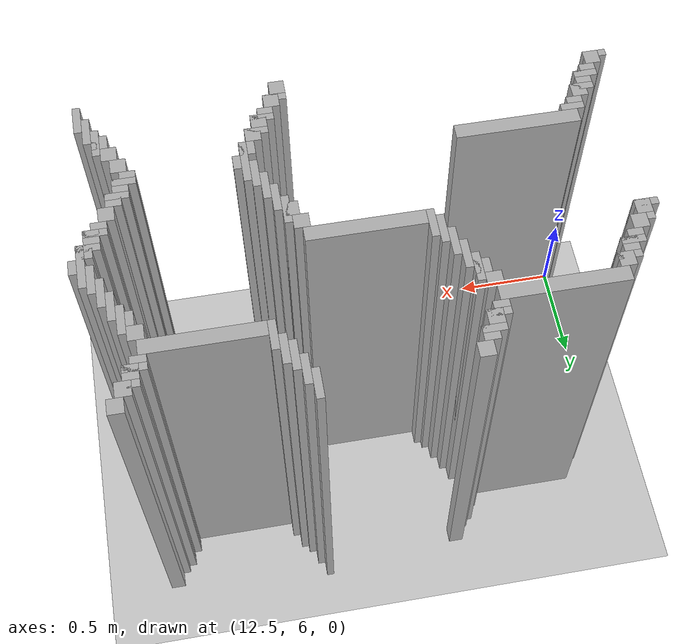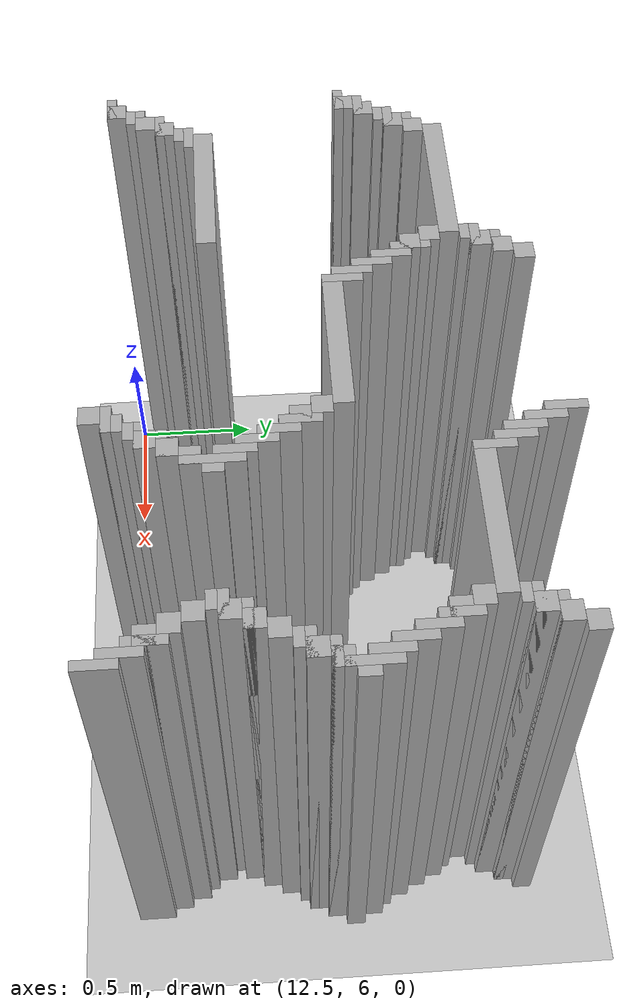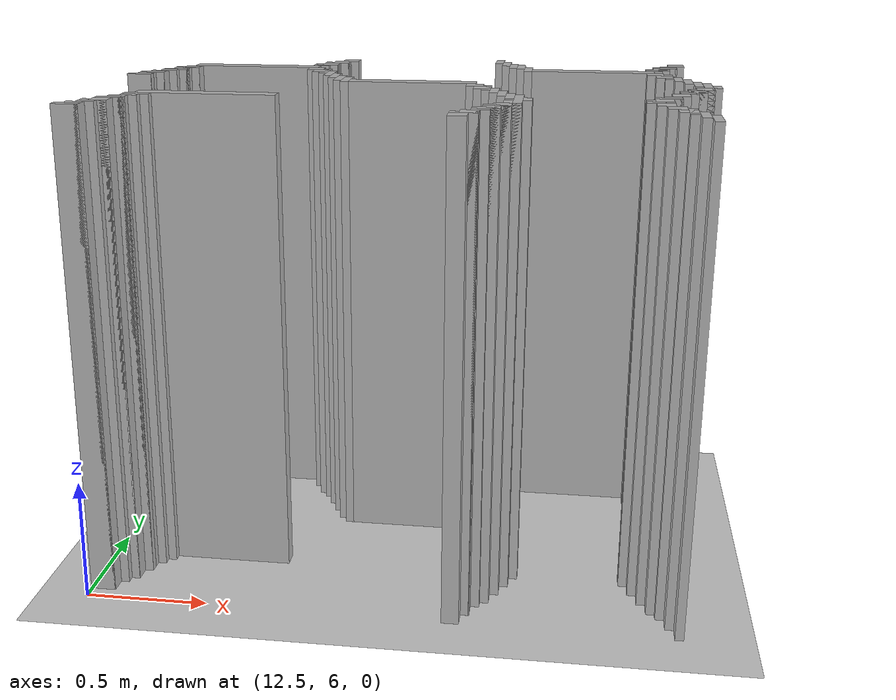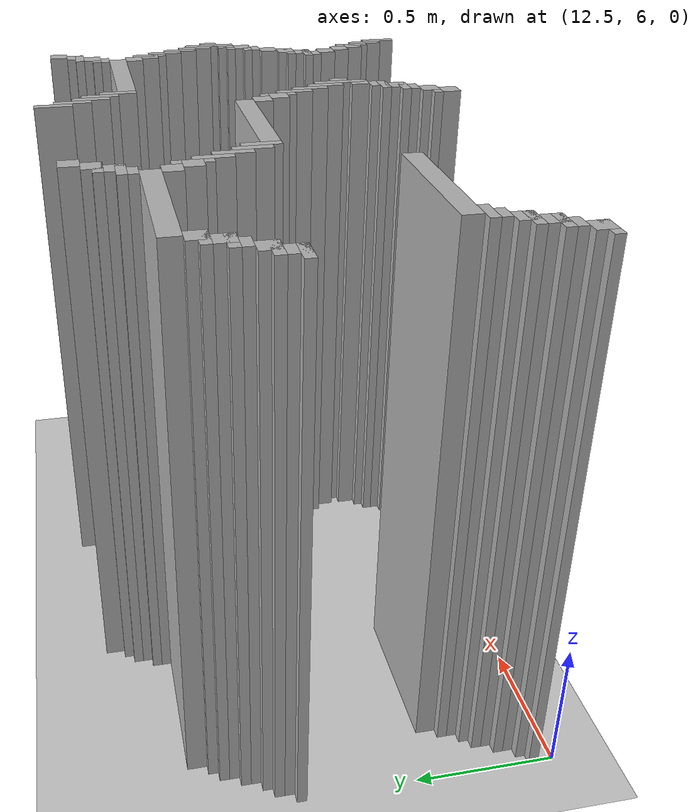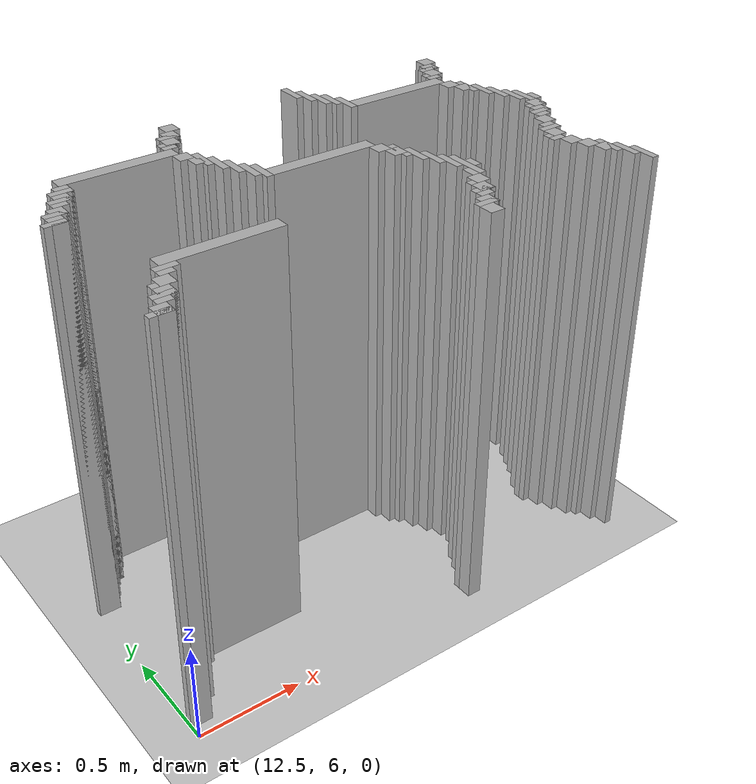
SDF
<sdf version="1.6">
 <world name="slam_world">
  <model name="ground_plane">
   <static>true</static>
   <link name="link">
    <collision name="collision">
     <geometry><plane><normal>0 0 1</normal><size>100 100</size></plane></geometry>
    </collision>
    <visual name="visual">
     <geometry><plane><normal>0 0 1</normal><size>100 100</size></plane></geometry>
     <material>
      <ambient>0.8 0.8 0.8 1</ambient>
      <diffuse>0.8 0.8 0.8 1</diffuse>
      <specular>0.8 0.8 0.8 1</specular>
     </material>
    </visual>
   </link>
  </model>
  <model name="wall_3352">
   <static>true</static>
   <pose>14.042923433874709 7.517401392111369 1.0 0 0 0</pose>
   <link name="link">
    <collision name="collision">
     <geometry><box><size>0.03480278422273782 0.13921113689095127 2.0</size></box></geometry>
    </collision>
    <visual name="visual">
     <geometry><box><size>0.03480278422273782 0.13921113689095127 2.0</size></box></geometry>
     <material><ambient>0.5 0.5 0.5 1</ambient><diffuse>0.7 0.7 0.7 1</diffuse></material>
    </visual>
   </link>
  </model>
  <model name="wall_3376">
   <static>true</static>
   <pose>13.364269141531322 7.48259860788863 1.0 0 0 0</pose>
   <link name="link">
    <collision name="collision">
     <geometry><box><size>0.06960556844547564 0.06960556844547564 2.0</size></box></geometry>
    </collision>
    <visual name="visual">
     <geometry><box><size>0.06960556844547564 0.06960556844547564 2.0</size></box></geometry>
     <material><ambient>0.5 0.5 0.5 1</ambient><diffuse>0.7 0.7 0.7 1</diffuse></material>
    </visual>
   </link>
  </model>
  <model name="wall_3377">
   <static>true</static>
   <pose>14.077726218097448 7.447795823665893 1.0 0 0 0</pose>
   <link name="link">
    <collision name="collision">
     <geometry><box><size>0.03480278422273782 0.13921113689095127 2.0</size></box></geometry>
    </collision>
    <visual name="visual">
     <geometry><box><size>0.03480278422273782 0.13921113689095127 2.0</size></box></geometry>
     <material><ambient>0.5 0.5 0.5 1</ambient><diffuse>0.7 0.7 0.7 1</diffuse></material>
    </visual>
   </link>
  </model>
  <model name="wall_3378">
   <static>true</static>
   <pose>14.825986078886311 7.48259860788863 1.0 0 0 0</pose>
   <link name="link">
    <collision name="collision">
     <geometry><box><size>0.06960556844547564 0.06960556844547564 2.0</size></box></geometry>
    </collision>
    <visual name="visual">
     <geometry><box><size>0.06960556844547564 0.06960556844547564 2.0</size></box></geometry>
     <material><ambient>0.5 0.5 0.5 1</ambient><diffuse>0.7 0.7 0.7 1</diffuse></material>
    </visual>
   </link>
  </model>
  <model name="wall_3391">
   <static>true</static>
   <pose>13.329466357308585 7.412993039443156 1.0 0 0 0</pose>
   <link name="link">
    <collision name="collision">
     <geometry><box><size>0.06960556844547564 0.06960556844547564 2.0</size></box></geometry>
    </collision>
    <visual name="visual">
     <geometry><box><size>0.06960556844547564 0.06960556844547564 2.0</size></box></geometry>
     <material><ambient>0.5 0.5 0.5 1</ambient><diffuse>0.7 0.7 0.7 1</diffuse></material>
    </visual>
   </link>
  </model>
  <model name="wall_3392">
   <static>true</static>
   <pose>14.112529002320185 7.378190255220417 1.0 0 0 0</pose>
   <link name="link">
    <collision name="collision">
     <geometry><box><size>0.03480278422273782 0.13921113689095127 2.0</size></box></geometry>
    </collision>
    <visual name="visual">
     <geometry><box><size>0.03480278422273782 0.13921113689095127 2.0</size></box></geometry>
     <material><ambient>0.5 0.5 0.5 1</ambient><diffuse>0.7 0.7 0.7 1</diffuse></material>
    </visual>
   </link>
  </model>
  <model name="wall_3393">
   <static>true</static>
   <pose>14.791183294663572 7.412993039443156 1.0 0 0 0</pose>
   <link name="link">
    <collision name="collision">
     <geometry><box><size>0.06960556844547564 0.06960556844547564 2.0</size></box></geometry>
    </collision>
    <visual name="visual">
     <geometry><box><size>0.06960556844547564 0.06960556844547564 2.0</size></box></geometry>
     <material><ambient>0.5 0.5 0.5 1</ambient><diffuse>0.7 0.7 0.7 1</diffuse></material>
    </visual>
   </link>
  </model>
  <model name="wall_3406">
   <static>true</static>
   <pose>13.312064965197216 7.395591647331786 1.0 0 0 0</pose>
   <link name="link">
    <collision name="collision">
     <geometry><box><size>0.10440835266821345 0.03480278422273782 2.0</size></box></geometry>
    </collision>
    <visual name="visual">
     <geometry><box><size>0.10440835266821345 0.03480278422273782 2.0</size></box></geometry>
     <material><ambient>0.5 0.5 0.5 1</ambient><diffuse>0.7 0.7 0.7 1</diffuse></material>
    </visual>
   </link>
  </model>
  <model name="wall_3407">
   <static>true</static>
   <pose>14.147331786542923 7.34338747099768 1.0 0 0 0</pose>
   <link name="link">
    <collision name="collision">
     <geometry><box><size>0.03480278422273782 0.13921113689095127 2.0</size></box></geometry>
    </collision>
    <visual name="visual">
     <geometry><box><size>0.03480278422273782 0.13921113689095127 2.0</size></box></geometry>
     <material><ambient>0.5 0.5 0.5 1</ambient><diffuse>0.7 0.7 0.7 1</diffuse></material>
    </visual>
   </link>
  </model>
  <model name="wall_3408">
   <static>true</static>
   <pose>14.773781902552203 7.395591647331786 1.0 0 0 0</pose>
   <link name="link">
    <collision name="collision">
     <geometry><box><size>0.10440835266821345 0.03480278422273782 2.0</size></box></geometry>
    </collision>
    <visual name="visual">
     <geometry><box><size>0.10440835266821345 0.03480278422273782 2.0</size></box></geometry>
     <material><ambient>0.5 0.5 0.5 1</ambient><diffuse>0.7 0.7 0.7 1</diffuse></material>
    </visual>
   </link>
  </model>
  <model name="wall_3414">
   <static>true</static>
   <pose>13.294663573085847 7.34338747099768 1.0 0 0 0</pose>
   <link name="link">
    <collision name="collision">
     <geometry><box><size>0.06960556844547564 0.06960556844547564 2.0</size></box></geometry>
    </collision>
    <visual name="visual">
     <geometry><box><size>0.06960556844547564 0.06960556844547564 2.0</size></box></geometry>
     <material><ambient>0.5 0.5 0.5 1</ambient><diffuse>0.7 0.7 0.7 1</diffuse></material>
    </visual>
   </link>
  </model>
  <model name="wall_3415">
   <static>true</static>
   <pose>14.756380510440835 7.34338747099768 1.0 0 0 0</pose>
   <link name="link">
    <collision name="collision">
     <geometry><box><size>0.06960556844547564 0.06960556844547564 2.0</size></box></geometry>
    </collision>
    <visual name="visual">
     <geometry><box><size>0.06960556844547564 0.06960556844547564 2.0</size></box></geometry>
     <material><ambient>0.5 0.5 0.5 1</ambient><diffuse>0.7 0.7 0.7 1</diffuse></material>
    </visual>
   </link>
  </model>
  <model name="wall_3428">
   <static>true</static>
   <pose>13.277262180974477 7.32598607888631 1.0 0 0 0</pose>
   <link name="link">
    <collision name="collision">
     <geometry><box><size>0.10440835266821345 0.03480278422273782 2.0</size></box></geometry>
    </collision>
    <visual name="visual">
     <geometry><box><size>0.10440835266821345 0.03480278422273782 2.0</size></box></geometry>
     <material><ambient>0.5 0.5 0.5 1</ambient><diffuse>0.7 0.7 0.7 1</diffuse></material>
    </visual>
   </link>
  </model>
  <model name="wall_3429">
   <static>true</static>
   <pose>14.18213457076566 7.273781902552204 1.0 0 0 0</pose>
   <link name="link">
    <collision name="collision">
     <geometry><box><size>0.03480278422273782 0.13921113689095127 2.0</size></box></geometry>
    </collision>
    <visual name="visual">
     <geometry><box><size>0.03480278422273782 0.13921113689095127 2.0</size></box></geometry>
     <material><ambient>0.5 0.5 0.5 1</ambient><diffuse>0.7 0.7 0.7 1</diffuse></material>
    </visual>
   </link>
  </model>
  <model name="wall_3430">
   <static>true</static>
   <pose>14.738979118329466 7.32598607888631 1.0 0 0 0</pose>
   <link name="link">
    <collision name="collision">
     <geometry><box><size>0.10440835266821345 0.03480278422273782 2.0</size></box></geometry>
    </collision>
    <visual name="visual">
     <geometry><box><size>0.10440835266821345 0.03480278422273782 2.0</size></box></geometry>
     <material><ambient>0.5 0.5 0.5 1</ambient><diffuse>0.7 0.7 0.7 1</diffuse></material>
    </visual>
   </link>
  </model>
  <model name="wall_3436">
   <static>true</static>
   <pose>13.259860788863108 7.291183294663573 1.0 0 0 0</pose>
   <link name="link">
    <collision name="collision">
     <geometry><box><size>0.06960556844547564 0.03480278422273782 2.0</size></box></geometry>
    </collision>
    <visual name="visual">
     <geometry><box><size>0.06960556844547564 0.03480278422273782 2.0</size></box></geometry>
     <material><ambient>0.5 0.5 0.5 1</ambient><diffuse>0.7 0.7 0.7 1</diffuse></material>
    </visual>
   </link>
  </model>
  <model name="wall_3437">
   <static>true</static>
   <pose>14.721577726218097 7.291183294663573 1.0 0 0 0</pose>
   <link name="link">
    <collision name="collision">
     <geometry><box><size>0.06960556844547564 0.03480278422273782 2.0</size></box></geometry>
    </collision>
    <visual name="visual">
     <geometry><box><size>0.06960556844547564 0.03480278422273782 2.0</size></box></geometry>
     <material><ambient>0.5 0.5 0.5 1</ambient><diffuse>0.7 0.7 0.7 1</diffuse></material>
    </visual>
   </link>
  </model>
  <model name="wall_3448">
   <static>true</static>
   <pose>12.981438515081207 7.238979118329466 1.0 0 0 0</pose>
   <link name="link">
    <collision name="collision">
     <geometry><box><size>0.5568445475638051 0.06960556844547564 2.0</size></box></geometry>
    </collision>
    <visual name="visual">
     <geometry><box><size>0.5568445475638051 0.06960556844547564 2.0</size></box></geometry>
     <material><ambient>0.5 0.5 0.5 1</ambient><diffuse>0.7 0.7 0.7 1</diffuse></material>
    </visual>
   </link>
  </model>
  <model name="wall_3449">
   <static>true</static>
   <pose>14.460556844547563 7.238979118329466 1.0 0 0 0</pose>
   <link name="link">
    <collision name="collision">
     <geometry><box><size>0.5220417633410672 0.06960556844547564 2.0</size></box></geometry>
    </collision>
    <visual name="visual">
     <geometry><box><size>0.5220417633410672 0.06960556844547564 2.0</size></box></geometry>
     <material><ambient>0.5 0.5 0.5 1</ambient><diffuse>0.7 0.7 0.7 1</diffuse></material>
    </visual>
   </link>
  </model>
  <model name="wall_3460">
   <static>true</static>
   <pose>12.703016241299304 7.16937354988399 1.0 0 0 0</pose>
   <link name="link">
    <collision name="collision">
     <geometry><box><size>0.06960556844547564 0.06960556844547564 2.0</size></box></geometry>
    </collision>
    <visual name="visual">
     <geometry><box><size>0.06960556844547564 0.06960556844547564 2.0</size></box></geometry>
     <material><ambient>0.5 0.5 0.5 1</ambient><diffuse>0.7 0.7 0.7 1</diffuse></material>
    </visual>
   </link>
  </model>
  <model name="wall_3461">
   <static>true</static>
   <pose>13.259860788863108 7.16937354988399 1.0 0 0 0</pose>
   <link name="link">
    <collision name="collision">
     <geometry><box><size>0.06960556844547564 0.06960556844547564 2.0</size></box></geometry>
    </collision>
    <visual name="visual">
     <geometry><box><size>0.06960556844547564 0.06960556844547564 2.0</size></box></geometry>
     <material><ambient>0.5 0.5 0.5 1</ambient><diffuse>0.7 0.7 0.7 1</diffuse></material>
    </visual>
   </link>
  </model>
  <model name="wall_3462">
   <static>true</static>
   <pose>14.721577726218097 7.16937354988399 1.0 0 0 0</pose>
   <link name="link">
    <collision name="collision">
     <geometry><box><size>0.06960556844547564 0.06960556844547564 2.0</size></box></geometry>
    </collision>
    <visual name="visual">
     <geometry><box><size>0.06960556844547564 0.06960556844547564 2.0</size></box></geometry>
     <material><ambient>0.5 0.5 0.5 1</ambient><diffuse>0.7 0.7 0.7 1</diffuse></material>
    </visual>
   </link>
  </model>
  <model name="wall_3473">
   <static>true</static>
   <pose>12.685614849187935 7.151972157772621 1.0 0 0 0</pose>
   <link name="link">
    <collision name="collision">
     <geometry><box><size>0.10440835266821345 0.03480278422273782 2.0</size></box></geometry>
    </collision>
    <visual name="visual">
     <geometry><box><size>0.10440835266821345 0.03480278422273782 2.0</size></box></geometry>
     <material><ambient>0.5 0.5 0.5 1</ambient><diffuse>0.7 0.7 0.7 1</diffuse></material>
    </visual>
   </link>
  </model>
  <model name="wall_3474">
   <static>true</static>
   <pose>13.312064965197216 7.099767981438514 1.0 0 0 0</pose>
   <link name="link">
    <collision name="collision">
     <geometry><box><size>0.03480278422273782 0.13921113689095127 2.0</size></box></geometry>
    </collision>
    <visual name="visual">
     <geometry><box><size>0.03480278422273782 0.13921113689095127 2.0</size></box></geometry>
     <material><ambient>0.5 0.5 0.5 1</ambient><diffuse>0.7 0.7 0.7 1</diffuse></material>
    </visual>
   </link>
  </model>
  <model name="wall_3475">
   <static>true</static>
   <pose>14.773781902552203 7.099767981438514 1.0 0 0 0</pose>
   <link name="link">
    <collision name="collision">
     <geometry><box><size>0.03480278422273782 0.13921113689095127 2.0</size></box></geometry>
    </collision>
    <visual name="visual">
     <geometry><box><size>0.03480278422273782 0.13921113689095127 2.0</size></box></geometry>
     <material><ambient>0.5 0.5 0.5 1</ambient><diffuse>0.7 0.7 0.7 1</diffuse></material>
    </visual>
   </link>
  </model>
  <model name="wall_3486">
   <static>true</static>
   <pose>12.668213457076565 7.099767981438514 1.0 0 0 0</pose>
   <link name="link">
    <collision name="collision">
     <geometry><box><size>0.06960556844547564 0.06960556844547564 2.0</size></box></geometry>
    </collision>
    <visual name="visual">
     <geometry><box><size>0.06960556844547564 0.06960556844547564 2.0</size></box></geometry>
     <material><ambient>0.5 0.5 0.5 1</ambient><diffuse>0.7 0.7 0.7 1</diffuse></material>
    </visual>
   </link>
  </model>
  <model name="wall_3487">
   <static>true</static>
   <pose>13.294663573085847 7.099767981438514 1.0 0 0 0</pose>
   <link name="link">
    <collision name="collision">
     <geometry><box><size>0.06960556844547564 0.06960556844547564 2.0</size></box></geometry>
    </collision>
    <visual name="visual">
     <geometry><box><size>0.06960556844547564 0.06960556844547564 2.0</size></box></geometry>
     <material><ambient>0.5 0.5 0.5 1</ambient><diffuse>0.7 0.7 0.7 1</diffuse></material>
    </visual>
   </link>
  </model>
  <model name="wall_3488">
   <static>true</static>
   <pose>14.756380510440835 7.099767981438514 1.0 0 0 0</pose>
   <link name="link">
    <collision name="collision">
     <geometry><box><size>0.06960556844547564 0.06960556844547564 2.0</size></box></geometry>
    </collision>
    <visual name="visual">
     <geometry><box><size>0.06960556844547564 0.06960556844547564 2.0</size></box></geometry>
     <material><ambient>0.5 0.5 0.5 1</ambient><diffuse>0.7 0.7 0.7 1</diffuse></material>
    </visual>
   </link>
  </model>
  <model name="wall_3499">
   <static>true</static>
   <pose>12.650812064965196 7.082366589327146 1.0 0 0 0</pose>
   <link name="link">
    <collision name="collision">
     <geometry><box><size>0.10440835266821345 0.03480278422273782 2.0</size></box></geometry>
    </collision>
    <visual name="visual">
     <geometry><box><size>0.10440835266821345 0.03480278422273782 2.0</size></box></geometry>
     <material><ambient>0.5 0.5 0.5 1</ambient><diffuse>0.7 0.7 0.7 1</diffuse></material>
    </visual>
   </link>
  </model>
  <model name="wall_3500">
   <static>true</static>
   <pose>13.346867749419953 7.03016241299304 1.0 0 0 0</pose>
   <link name="link">
    <collision name="collision">
     <geometry><box><size>0.03480278422273782 0.13921113689095127 2.0</size></box></geometry>
    </collision>
    <visual name="visual">
     <geometry><box><size>0.03480278422273782 0.13921113689095127 2.0</size></box></geometry>
     <material><ambient>0.5 0.5 0.5 1</ambient><diffuse>0.7 0.7 0.7 1</diffuse></material>
    </visual>
   </link>
  </model>
  <model name="wall_3501">
   <static>true</static>
   <pose>14.80858468677494 7.03016241299304 1.0 0 0 0</pose>
   <link name="link">
    <collision name="collision">
     <geometry><box><size>0.03480278422273782 0.13921113689095127 2.0</size></box></geometry>
    </collision>
    <visual name="visual">
     <geometry><box><size>0.03480278422273782 0.13921113689095127 2.0</size></box></geometry>
     <material><ambient>0.5 0.5 0.5 1</ambient><diffuse>0.7 0.7 0.7 1</diffuse></material>
    </visual>
   </link>
  </model>
  <model name="wall_3505">
   <static>true</static>
   <pose>12.633410672853827 7.047563805104408 1.0 0 0 0</pose>
   <link name="link">
    <collision name="collision">
     <geometry><box><size>0.06960556844547564 0.03480278422273782 2.0</size></box></geometry>
    </collision>
    <visual name="visual">
     <geometry><box><size>0.06960556844547564 0.03480278422273782 2.0</size></box></geometry>
     <material><ambient>0.5 0.5 0.5 1</ambient><diffuse>0.7 0.7 0.7 1</diffuse></material>
    </visual>
   </link>
  </model>
  <model name="wall_3516">
   <static>true</static>
   <pose>12.59860788863109 6.995359628770301 1.0 0 0 0</pose>
   <link name="link">
    <collision name="collision">
     <geometry><box><size>0.06960556844547564 0.06960556844547564 2.0</size></box></geometry>
    </collision>
    <visual name="visual">
     <geometry><box><size>0.06960556844547564 0.06960556844547564 2.0</size></box></geometry>
     <material><ambient>0.5 0.5 0.5 1</ambient><diffuse>0.7 0.7 0.7 1</diffuse></material>
    </visual>
   </link>
  </model>
  <model name="wall_3517">
   <static>true</static>
   <pose>13.38167053364269 6.960556844547564 1.0 0 0 0</pose>
   <link name="link">
    <collision name="collision">
     <geometry><box><size>0.03480278422273782 0.13921113689095127 2.0</size></box></geometry>
    </collision>
    <visual name="visual">
     <geometry><box><size>0.03480278422273782 0.13921113689095127 2.0</size></box></geometry>
     <material><ambient>0.5 0.5 0.5 1</ambient><diffuse>0.7 0.7 0.7 1</diffuse></material>
    </visual>
   </link>
  </model>
  <model name="wall_3518">
   <static>true</static>
   <pose>14.84338747099768 6.960556844547564 1.0 0 0 0</pose>
   <link name="link">
    <collision name="collision">
     <geometry><box><size>0.03480278422273782 0.13921113689095127 2.0</size></box></geometry>
    </collision>
    <visual name="visual">
     <geometry><box><size>0.03480278422273782 0.13921113689095127 2.0</size></box></geometry>
     <material><ambient>0.5 0.5 0.5 1</ambient><diffuse>0.7 0.7 0.7 1</diffuse></material>
    </visual>
   </link>
  </model>
  <model name="wall_3522">
   <static>true</static>
   <pose>12.581206496519721 6.977958236658933 1.0 0 0 0</pose>
   <link name="link">
    <collision name="collision">
     <geometry><box><size>0.10440835266821345 0.03480278422273782 2.0</size></box></geometry>
    </collision>
    <visual name="visual">
     <geometry><box><size>0.10440835266821345 0.03480278422273782 2.0</size></box></geometry>
     <material><ambient>0.5 0.5 0.5 1</ambient><diffuse>0.7 0.7 0.7 1</diffuse></material>
    </visual>
   </link>
  </model>
  <model name="wall_3533">
   <static>true</static>
   <pose>12.563805104408353 6.9257540603248255 1.0 0 0 0</pose>
   <link name="link">
    <collision name="collision">
     <geometry><box><size>0.06960556844547564 0.06960556844547564 2.0</size></box></geometry>
    </collision>
    <visual name="visual">
     <geometry><box><size>0.06960556844547564 0.06960556844547564 2.0</size></box></geometry>
     <material><ambient>0.5 0.5 0.5 1</ambient><diffuse>0.7 0.7 0.7 1</diffuse></material>
    </visual>
   </link>
  </model>
  <model name="wall_3534">
   <static>true</static>
   <pose>13.416473317865428 6.890951276102088 1.0 0 0 0</pose>
   <link name="link">
    <collision name="collision">
     <geometry><box><size>0.03480278422273782 0.13921113689095127 2.0</size></box></geometry>
    </collision>
    <visual name="visual">
     <geometry><box><size>0.03480278422273782 0.13921113689095127 2.0</size></box></geometry>
     <material><ambient>0.5 0.5 0.5 1</ambient><diffuse>0.7 0.7 0.7 1</diffuse></material>
    </visual>
   </link>
  </model>
  <model name="wall_3535">
   <static>true</static>
   <pose>14.878190255220417 6.890951276102088 1.0 0 0 0</pose>
   <link name="link">
    <collision name="collision">
     <geometry><box><size>0.03480278422273782 0.13921113689095127 2.0</size></box></geometry>
    </collision>
    <visual name="visual">
     <geometry><box><size>0.03480278422273782 0.13921113689095127 2.0</size></box></geometry>
     <material><ambient>0.5 0.5 0.5 1</ambient><diffuse>0.7 0.7 0.7 1</diffuse></material>
    </visual>
   </link>
  </model>
  <model name="wall_3546">
   <static>true</static>
   <pose>12.546403712296984 6.908352668213457 1.0 0 0 0</pose>
   <link name="link">
    <collision name="collision">
     <geometry><box><size>0.10440835266821345 0.03480278422273782 2.0</size></box></geometry>
    </collision>
    <visual name="visual">
     <geometry><box><size>0.10440835266821345 0.03480278422273782 2.0</size></box></geometry>
     <material><ambient>0.5 0.5 0.5 1</ambient><diffuse>0.7 0.7 0.7 1</diffuse></material>
    </visual>
   </link>
  </model>
  <model name="wall_3547">
   <static>true</static>
   <pose>13.451276102088167 6.85614849187935 1.0 0 0 0</pose>
   <link name="link">
    <collision name="collision">
     <geometry><box><size>0.03480278422273782 0.13921113689095127 2.0</size></box></geometry>
    </collision>
    <visual name="visual">
     <geometry><box><size>0.03480278422273782 0.13921113689095127 2.0</size></box></geometry>
     <material><ambient>0.5 0.5 0.5 1</ambient><diffuse>0.7 0.7 0.7 1</diffuse></material>
    </visual>
   </link>
  </model>
  <model name="wall_3548">
   <static>true</static>
   <pose>14.912993039443155 6.821345707656612 1.0 0 0 0</pose>
   <link name="link">
    <collision name="collision">
     <geometry><box><size>0.03480278422273782 0.2088167053364269 2.0</size></box></geometry>
    </collision>
    <visual name="visual">
     <geometry><box><size>0.03480278422273782 0.2088167053364269 2.0</size></box></geometry>
     <material><ambient>0.5 0.5 0.5 1</ambient><diffuse>0.7 0.7 0.7 1</diffuse></material>
    </visual>
   </link>
  </model>
  <model name="wall_3566">
   <static>true</static>
   <pose>13.729698375870068 6.821345707656612 1.0 0 0 0</pose>
   <link name="link">
    <collision name="collision">
     <geometry><box><size>0.5220417633410672 0.06960556844547564 2.0</size></box></geometry>
    </collision>
    <visual name="visual">
     <geometry><box><size>0.5220417633410672 0.06960556844547564 2.0</size></box></geometry>
     <material><ambient>0.5 0.5 0.5 1</ambient><diffuse>0.7 0.7 0.7 1</diffuse></material>
    </visual>
   </link>
  </model>
  <model name="wall_3567">
   <static>true</static>
   <pose>14.947795823665892 6.821345707656612 1.0 0 0 0</pose>
   <link name="link">
    <collision name="collision">
     <geometry><box><size>0.03480278422273782 0.06960556844547564 2.0</size></box></geometry>
    </collision>
    <visual name="visual">
     <geometry><box><size>0.03480278422273782 0.06960556844547564 2.0</size></box></geometry>
     <material><ambient>0.5 0.5 0.5 1</ambient><diffuse>0.7 0.7 0.7 1</diffuse></material>
    </visual>
   </link>
  </model>
  <model name="wall_3584">
   <static>true</static>
   <pose>13.990719257540603 6.751740139211137 1.0 0 0 0</pose>
   <link name="link">
    <collision name="collision">
     <geometry><box><size>0.06960556844547564 0.06960556844547564 2.0</size></box></geometry>
    </collision>
    <visual name="visual">
     <geometry><box><size>0.06960556844547564 0.06960556844547564 2.0</size></box></geometry>
     <material><ambient>0.5 0.5 0.5 1</ambient><diffuse>0.7 0.7 0.7 1</diffuse></material>
    </visual>
   </link>
  </model>
  <model name="wall_3585">
   <static>true</static>
   <pose>14.895591647331786 6.751740139211137 1.0 0 0 0</pose>
   <link name="link">
    <collision name="collision">
     <geometry><box><size>0.06960556844547564 0.06960556844547564 2.0</size></box></geometry>
    </collision>
    <visual name="visual">
     <geometry><box><size>0.06960556844547564 0.06960556844547564 2.0</size></box></geometry>
     <material><ambient>0.5 0.5 0.5 1</ambient><diffuse>0.7 0.7 0.7 1</diffuse></material>
    </visual>
   </link>
  </model>
  <model name="wall_3598">
   <static>true</static>
   <pose>14.042923433874709 6.682134570765661 1.0 0 0 0</pose>
   <link name="link">
    <collision name="collision">
     <geometry><box><size>0.03480278422273782 0.13921113689095127 2.0</size></box></geometry>
    </collision>
    <visual name="visual">
     <geometry><box><size>0.03480278422273782 0.13921113689095127 2.0</size></box></geometry>
     <material><ambient>0.5 0.5 0.5 1</ambient><diffuse>0.7 0.7 0.7 1</diffuse></material>
    </visual>
   </link>
  </model>
  <model name="wall_3599">
   <static>true</static>
   <pose>14.878190255220417 6.734338747099768 1.0 0 0 0</pose>
   <link name="link">
    <collision name="collision">
     <geometry><box><size>0.10440835266821345 0.03480278422273782 2.0</size></box></geometry>
    </collision>
    <visual name="visual">
     <geometry><box><size>0.10440835266821345 0.03480278422273782 2.0</size></box></geometry>
     <material><ambient>0.5 0.5 0.5 1</ambient><diffuse>0.7 0.7 0.7 1</diffuse></material>
    </visual>
   </link>
  </model>
  <model name="wall_3612">
   <static>true</static>
   <pose>14.02552204176334 6.682134570765661 1.0 0 0 0</pose>
   <link name="link">
    <collision name="collision">
     <geometry><box><size>0.06960556844547564 0.06960556844547564 2.0</size></box></geometry>
    </collision>
    <visual name="visual">
     <geometry><box><size>0.06960556844547564 0.06960556844547564 2.0</size></box></geometry>
     <material><ambient>0.5 0.5 0.5 1</ambient><diffuse>0.7 0.7 0.7 1</diffuse></material>
    </visual>
   </link>
  </model>
  <model name="wall_3613">
   <static>true</static>
   <pose>14.860788863109049 6.682134570765661 1.0 0 0 0</pose>
   <link name="link">
    <collision name="collision">
     <geometry><box><size>0.06960556844547564 0.06960556844547564 2.0</size></box></geometry>
    </collision>
    <visual name="visual">
     <geometry><box><size>0.06960556844547564 0.06960556844547564 2.0</size></box></geometry>
     <material><ambient>0.5 0.5 0.5 1</ambient><diffuse>0.7 0.7 0.7 1</diffuse></material>
    </visual>
   </link>
  </model>
  <model name="wall_3626">
   <static>true</static>
   <pose>14.077726218097448 6.612529002320185 1.0 0 0 0</pose>
   <link name="link">
    <collision name="collision">
     <geometry><box><size>0.03480278422273782 0.13921113689095127 2.0</size></box></geometry>
    </collision>
    <visual name="visual">
     <geometry><box><size>0.03480278422273782 0.13921113689095127 2.0</size></box></geometry>
     <material><ambient>0.5 0.5 0.5 1</ambient><diffuse>0.7 0.7 0.7 1</diffuse></material>
    </visual>
   </link>
  </model>
  <model name="wall_3627">
   <static>true</static>
   <pose>14.84338747099768 6.664733178654292 1.0 0 0 0</pose>
   <link name="link">
    <collision name="collision">
     <geometry><box><size>0.10440835266821345 0.03480278422273782 2.0</size></box></geometry>
    </collision>
    <visual name="visual">
     <geometry><box><size>0.10440835266821345 0.03480278422273782 2.0</size></box></geometry>
     <material><ambient>0.5 0.5 0.5 1</ambient><diffuse>0.7 0.7 0.7 1</diffuse></material>
    </visual>
   </link>
  </model>
  <model name="wall_3635">
   <static>true</static>
   <pose>14.825986078886311 6.629930394431554 1.0 0 0 0</pose>
   <link name="link">
    <collision name="collision">
     <geometry><box><size>0.06960556844547564 0.03480278422273782 2.0</size></box></geometry>
    </collision>
    <visual name="visual">
     <geometry><box><size>0.06960556844547564 0.03480278422273782 2.0</size></box></geometry>
     <material><ambient>0.5 0.5 0.5 1</ambient><diffuse>0.7 0.7 0.7 1</diffuse></material>
    </visual>
   </link>
  </model>
  <model name="wall_3648">
   <static>true</static>
   <pose>14.112529002320185 6.5429234338747095 1.0 0 0 0</pose>
   <link name="link">
    <collision name="collision">
     <geometry><box><size>0.03480278422273782 0.13921113689095127 2.0</size></box></geometry>
    </collision>
    <visual name="visual">
     <geometry><box><size>0.03480278422273782 0.13921113689095127 2.0</size></box></geometry>
     <material><ambient>0.5 0.5 0.5 1</ambient><diffuse>0.7 0.7 0.7 1</diffuse></material>
    </visual>
   </link>
  </model>
  <model name="wall_3649">
   <static>true</static>
   <pose>14.791183294663572 6.577726218097448 1.0 0 0 0</pose>
   <link name="link">
    <collision name="collision">
     <geometry><box><size>0.06960556844547564 0.06960556844547564 2.0</size></box></geometry>
    </collision>
    <visual name="visual">
     <geometry><box><size>0.06960556844547564 0.06960556844547564 2.0</size></box></geometry>
     <material><ambient>0.5 0.5 0.5 1</ambient><diffuse>0.7 0.7 0.7 1</diffuse></material>
    </visual>
   </link>
  </model>
  <model name="wall_3662">
   <static>true</static>
   <pose>14.147331786542923 6.473317865429234 1.0 0 0 0</pose>
   <link name="link">
    <collision name="collision">
     <geometry><box><size>0.03480278422273782 0.13921113689095127 2.0</size></box></geometry>
    </collision>
    <visual name="visual">
     <geometry><box><size>0.03480278422273782 0.13921113689095127 2.0</size></box></geometry>
     <material><ambient>0.5 0.5 0.5 1</ambient><diffuse>0.7 0.7 0.7 1</diffuse></material>
    </visual>
   </link>
  </model>
  <model name="wall_3663">
   <static>true</static>
   <pose>14.756380510440835 6.508120649651972 1.0 0 0 0</pose>
   <link name="link">
    <collision name="collision">
     <geometry><box><size>0.06960556844547564 0.06960556844547564 2.0</size></box></geometry>
    </collision>
    <visual name="visual">
     <geometry><box><size>0.06960556844547564 0.06960556844547564 2.0</size></box></geometry>
     <material><ambient>0.5 0.5 0.5 1</ambient><diffuse>0.7 0.7 0.7 1</diffuse></material>
    </visual>
   </link>
  </model>
  <model name="wall_3676">
   <static>true</static>
   <pose>14.18213457076566 6.403712296983758 1.0 0 0 0</pose>
   <link name="link">
    <collision name="collision">
     <geometry><box><size>0.03480278422273782 0.2088167053364269 2.0</size></box></geometry>
    </collision>
    <visual name="visual">
     <geometry><box><size>0.03480278422273782 0.2088167053364269 2.0</size></box></geometry>
     <material><ambient>0.5 0.5 0.5 1</ambient><diffuse>0.7 0.7 0.7 1</diffuse></material>
    </visual>
   </link>
  </model>
  <model name="wall_3677">
   <static>true</static>
   <pose>14.738979118329466 6.490719257540603 1.0 0 0 0</pose>
   <link name="link">
    <collision name="collision">
     <geometry><box><size>0.10440835266821345 0.03480278422273782 2.0</size></box></geometry>
    </collision>
    <visual name="visual">
     <geometry><box><size>0.10440835266821345 0.03480278422273782 2.0</size></box></geometry>
     <material><ambient>0.5 0.5 0.5 1</ambient><diffuse>0.7 0.7 0.7 1</diffuse></material>
    </visual>
   </link>
  </model>
  <model name="wall_3685">
   <static>true</static>
   <pose>14.721577726218097 6.438515081206496 1.0 0 0 0</pose>
   <link name="link">
    <collision name="collision">
     <geometry><box><size>0.06960556844547564 0.06960556844547564 2.0</size></box></geometry>
    </collision>
    <visual name="visual">
     <geometry><box><size>0.06960556844547564 0.06960556844547564 2.0</size></box></geometry>
     <material><ambient>0.5 0.5 0.5 1</ambient><diffuse>0.7 0.7 0.7 1</diffuse></material>
    </visual>
   </link>
  </model>
  <model name="wall_3698">
   <static>true</static>
   <pose>12.981438515081207 6.403712296983758 1.0 0 0 0</pose>
   <link name="link">
    <collision name="collision">
     <geometry><box><size>0.5568445475638051 0.06960556844547564 2.0</size></box></geometry>
    </collision>
    <visual name="visual">
     <geometry><box><size>0.5568445475638051 0.06960556844547564 2.0</size></box></geometry>
     <material><ambient>0.5 0.5 0.5 1</ambient><diffuse>0.7 0.7 0.7 1</diffuse></material>
    </visual>
   </link>
  </model>
  <model name="wall_3699">
   <static>true</static>
   <pose>14.2169373549884 6.403712296983758 1.0 0 0 0</pose>
   <link name="link">
    <collision name="collision">
     <geometry><box><size>0.03480278422273782 0.06960556844547564 2.0</size></box></geometry>
    </collision>
    <visual name="visual">
     <geometry><box><size>0.03480278422273782 0.06960556844547564 2.0</size></box></geometry>
     <material><ambient>0.5 0.5 0.5 1</ambient><diffuse>0.7 0.7 0.7 1</diffuse></material>
    </visual>
   </link>
  </model>
  <model name="wall_3700">
   <static>true</static>
   <pose>14.704176334106728 6.421113689095128 1.0 0 0 0</pose>
   <link name="link">
    <collision name="collision">
     <geometry><box><size>0.10440835266821345 0.03480278422273782 2.0</size></box></geometry>
    </collision>
    <visual name="visual">
     <geometry><box><size>0.10440835266821345 0.03480278422273782 2.0</size></box></geometry>
     <material><ambient>0.5 0.5 0.5 1</ambient><diffuse>0.7 0.7 0.7 1</diffuse></material>
    </visual>
   </link>
  </model>
  <model name="wall_3708">
   <static>true</static>
   <pose>14.68677494199536 6.386310904872389 1.0 0 0 0</pose>
   <link name="link">
    <collision name="collision">
     <geometry><box><size>0.06960556844547564 0.03480278422273782 2.0</size></box></geometry>
    </collision>
    <visual name="visual">
     <geometry><box><size>0.06960556844547564 0.03480278422273782 2.0</size></box></geometry>
     <material><ambient>0.5 0.5 0.5 1</ambient><diffuse>0.7 0.7 0.7 1</diffuse></material>
    </visual>
   </link>
  </model>
  <model name="wall_3724">
   <static>true</static>
   <pose>12.720417633410673 6.351508120649652 1.0 0 0 0</pose>
   <link name="link">
    <collision name="collision">
     <geometry><box><size>0.10440835266821345 0.03480278422273782 2.0</size></box></geometry>
    </collision>
    <visual name="visual">
     <geometry><box><size>0.10440835266821345 0.03480278422273782 2.0</size></box></geometry>
     <material><ambient>0.5 0.5 0.5 1</ambient><diffuse>0.7 0.7 0.7 1</diffuse></material>
    </visual>
   </link>
  </model>
  <model name="wall_3725">
   <static>true</static>
   <pose>14.164733178654291 6.334106728538282 1.0 0 0 0</pose>
   <link name="link">
    <collision name="collision">
     <geometry><box><size>0.06960556844547564 0.06960556844547564 2.0</size></box></geometry>
    </collision>
    <visual name="visual">
     <geometry><box><size>0.06960556844547564 0.06960556844547564 2.0</size></box></geometry>
     <material><ambient>0.5 0.5 0.5 1</ambient><diffuse>0.7 0.7 0.7 1</diffuse></material>
    </visual>
   </link>
  </model>
  <model name="wall_3726">
   <static>true</static>
   <pose>14.721577726218097 6.334106728538282 1.0 0 0 0</pose>
   <link name="link">
    <collision name="collision">
     <geometry><box><size>0.06960556844547564 0.06960556844547564 2.0</size></box></geometry>
    </collision>
    <visual name="visual">
     <geometry><box><size>0.06960556844547564 0.06960556844547564 2.0</size></box></geometry>
     <material><ambient>0.5 0.5 0.5 1</ambient><diffuse>0.7 0.7 0.7 1</diffuse></material>
    </visual>
   </link>
  </model>
  <model name="wall_3735">
   <static>true</static>
   <pose>12.703016241299304 6.316705336426914 1.0 0 0 0</pose>
   <link name="link">
    <collision name="collision">
     <geometry><box><size>0.06960556844547564 0.03480278422273782 2.0</size></box></geometry>
    </collision>
    <visual name="visual">
     <geometry><box><size>0.06960556844547564 0.03480278422273782 2.0</size></box></geometry>
     <material><ambient>0.5 0.5 0.5 1</ambient><diffuse>0.7 0.7 0.7 1</diffuse></material>
    </visual>
   </link>
  </model>
  <model name="wall_3751">
   <static>true</static>
   <pose>12.668213457076565 6.2645011600928076 1.0 0 0 0</pose>
   <link name="link">
    <collision name="collision">
     <geometry><box><size>0.06960556844547564 0.06960556844547564 2.0</size></box></geometry>
    </collision>
    <visual name="visual">
     <geometry><box><size>0.06960556844547564 0.06960556844547564 2.0</size></box></geometry>
     <material><ambient>0.5 0.5 0.5 1</ambient><diffuse>0.7 0.7 0.7 1</diffuse></material>
    </visual>
   </link>
  </model>
  <model name="wall_3752">
   <static>true</static>
   <pose>14.129930394431554 6.2645011600928076 1.0 0 0 0</pose>
   <link name="link">
    <collision name="collision">
     <geometry><box><size>0.06960556844547564 0.06960556844547564 2.0</size></box></geometry>
    </collision>
    <visual name="visual">
     <geometry><box><size>0.06960556844547564 0.06960556844547564 2.0</size></box></geometry>
     <material><ambient>0.5 0.5 0.5 1</ambient><diffuse>0.7 0.7 0.7 1</diffuse></material>
    </visual>
   </link>
  </model>
  <model name="wall_3753">
   <static>true</static>
   <pose>14.756380510440835 6.2645011600928076 1.0 0 0 0</pose>
   <link name="link">
    <collision name="collision">
     <geometry><box><size>0.06960556844547564 0.06960556844547564 2.0</size></box></geometry>
    </collision>
    <visual name="visual">
     <geometry><box><size>0.06960556844547564 0.06960556844547564 2.0</size></box></geometry>
     <material><ambient>0.5 0.5 0.5 1</ambient><diffuse>0.7 0.7 0.7 1</diffuse></material>
    </visual>
   </link>
  </model>
  <model name="wall_3769">
   <static>true</static>
   <pose>12.650812064965196 6.247099767981438 1.0 0 0 0</pose>
   <link name="link">
    <collision name="collision">
     <geometry><box><size>0.10440835266821345 0.03480278422273782 2.0</size></box></geometry>
    </collision>
    <visual name="visual">
     <geometry><box><size>0.10440835266821345 0.03480278422273782 2.0</size></box></geometry>
     <material><ambient>0.5 0.5 0.5 1</ambient><diffuse>0.7 0.7 0.7 1</diffuse></material>
    </visual>
   </link>
  </model>
  <model name="wall_3770">
   <static>true</static>
   <pose>14.112529002320185 6.247099767981438 1.0 0 0 0</pose>
   <link name="link">
    <collision name="collision">
     <geometry><box><size>0.10440835266821345 0.03480278422273782 2.0</size></box></geometry>
    </collision>
    <visual name="visual">
     <geometry><box><size>0.10440835266821345 0.03480278422273782 2.0</size></box></geometry>
     <material><ambient>0.5 0.5 0.5 1</ambient><diffuse>0.7 0.7 0.7 1</diffuse></material>
    </visual>
   </link>
  </model>
  <model name="wall_3771">
   <static>true</static>
   <pose>14.80858468677494 6.194895591647332 1.0 0 0 0</pose>
   <link name="link">
    <collision name="collision">
     <geometry><box><size>0.03480278422273782 0.13921113689095127 2.0</size></box></geometry>
    </collision>
    <visual name="visual">
     <geometry><box><size>0.03480278422273782 0.13921113689095127 2.0</size></box></geometry>
     <material><ambient>0.5 0.5 0.5 1</ambient><diffuse>0.7 0.7 0.7 1</diffuse></material>
    </visual>
   </link>
  </model>
  <model name="wall_3787">
   <static>true</static>
   <pose>12.633410672853827 6.194895591647332 1.0 0 0 0</pose>
   <link name="link">
    <collision name="collision">
     <geometry><box><size>0.06960556844547564 0.06960556844547564 2.0</size></box></geometry>
    </collision>
    <visual name="visual">
     <geometry><box><size>0.06960556844547564 0.06960556844547564 2.0</size></box></geometry>
     <material><ambient>0.5 0.5 0.5 1</ambient><diffuse>0.7 0.7 0.7 1</diffuse></material>
    </visual>
   </link>
  </model>
  <model name="wall_3788">
   <static>true</static>
   <pose>14.095127610208817 6.194895591647332 1.0 0 0 0</pose>
   <link name="link">
    <collision name="collision">
     <geometry><box><size>0.06960556844547564 0.06960556844547564 2.0</size></box></geometry>
    </collision>
    <visual name="visual">
     <geometry><box><size>0.06960556844547564 0.06960556844547564 2.0</size></box></geometry>
     <material><ambient>0.5 0.5 0.5 1</ambient><diffuse>0.7 0.7 0.7 1</diffuse></material>
    </visual>
   </link>
  </model>
  <model name="wall_3789">
   <static>true</static>
   <pose>14.791183294663572 6.194895591647332 1.0 0 0 0</pose>
   <link name="link">
    <collision name="collision">
     <geometry><box><size>0.06960556844547564 0.06960556844547564 2.0</size></box></geometry>
    </collision>
    <visual name="visual">
     <geometry><box><size>0.06960556844547564 0.06960556844547564 2.0</size></box></geometry>
     <material><ambient>0.5 0.5 0.5 1</ambient><diffuse>0.7 0.7 0.7 1</diffuse></material>
    </visual>
   </link>
  </model>
  <model name="wall_3805">
   <static>true</static>
   <pose>12.616009280742459 6.177494199535962 1.0 0 0 0</pose>
   <link name="link">
    <collision name="collision">
     <geometry><box><size>0.10440835266821345 0.03480278422273782 2.0</size></box></geometry>
    </collision>
    <visual name="visual">
     <geometry><box><size>0.10440835266821345 0.03480278422273782 2.0</size></box></geometry>
     <material><ambient>0.5 0.5 0.5 1</ambient><diffuse>0.7 0.7 0.7 1</diffuse></material>
    </visual>
   </link>
  </model>
  <model name="wall_3806">
   <static>true</static>
   <pose>14.077726218097448 6.177494199535962 1.0 0 0 0</pose>
   <link name="link">
    <collision name="collision">
     <geometry><box><size>0.10440835266821345 0.03480278422273782 2.0</size></box></geometry>
    </collision>
    <visual name="visual">
     <geometry><box><size>0.10440835266821345 0.03480278422273782 2.0</size></box></geometry>
     <material><ambient>0.5 0.5 0.5 1</ambient><diffuse>0.7 0.7 0.7 1</diffuse></material>
    </visual>
   </link>
  </model>
  <model name="wall_3807">
   <static>true</static>
   <pose>14.84338747099768 6.125290023201856 1.0 0 0 0</pose>
   <link name="link">
    <collision name="collision">
     <geometry><box><size>0.03480278422273782 0.13921113689095127 2.0</size></box></geometry>
    </collision>
    <visual name="visual">
     <geometry><box><size>0.03480278422273782 0.13921113689095127 2.0</size></box></geometry>
     <material><ambient>0.5 0.5 0.5 1</ambient><diffuse>0.7 0.7 0.7 1</diffuse></material>
    </visual>
   </link>
  </model>
  <model name="wall_3815">
   <static>true</static>
   <pose>12.59860788863109 6.142691415313225 1.0 0 0 0</pose>
   <link name="link">
    <collision name="collision">
     <geometry><box><size>0.06960556844547564 0.03480278422273782 2.0</size></box></geometry>
    </collision>
    <visual name="visual">
     <geometry><box><size>0.06960556844547564 0.03480278422273782 2.0</size></box></geometry>
     <material><ambient>0.5 0.5 0.5 1</ambient><diffuse>0.7 0.7 0.7 1</diffuse></material>
    </visual>
   </link>
  </model>
  <model name="wall_3816">
   <static>true</static>
   <pose>14.06032482598608 6.142691415313225 1.0 0 0 0</pose>
   <link name="link">
    <collision name="collision">
     <geometry><box><size>0.06960556844547564 0.03480278422273782 2.0</size></box></geometry>
    </collision>
    <visual name="visual">
     <geometry><box><size>0.06960556844547564 0.03480278422273782 2.0</size></box></geometry>
     <material><ambient>0.5 0.5 0.5 1</ambient><diffuse>0.7 0.7 0.7 1</diffuse></material>
    </visual>
   </link>
  </model>
  <model name="wall_3832">
   <static>true</static>
   <pose>12.563805104408353 6.090487238979118 1.0 0 0 0</pose>
   <link name="link">
    <collision name="collision">
     <geometry><box><size>0.06960556844547564 0.06960556844547564 2.0</size></box></geometry>
    </collision>
    <visual name="visual">
     <geometry><box><size>0.06960556844547564 0.06960556844547564 2.0</size></box></geometry>
     <material><ambient>0.5 0.5 0.5 1</ambient><diffuse>0.7 0.7 0.7 1</diffuse></material>
    </visual>
   </link>
  </model>
  <model name="wall_3833">
   <static>true</static>
   <pose>14.02552204176334 6.090487238979118 1.0 0 0 0</pose>
   <link name="link">
    <collision name="collision">
     <geometry><box><size>0.06960556844547564 0.06960556844547564 2.0</size></box></geometry>
    </collision>
    <visual name="visual">
     <geometry><box><size>0.06960556844547564 0.06960556844547564 2.0</size></box></geometry>
     <material><ambient>0.5 0.5 0.5 1</ambient><diffuse>0.7 0.7 0.7 1</diffuse></material>
    </visual>
   </link>
  </model>
  <model name="wall_3834">
   <static>true</static>
   <pose>14.878190255220417 6.05568445475638 1.0 0 0 0</pose>
   <link name="link">
    <collision name="collision">
     <geometry><box><size>0.03480278422273782 0.13921113689095127 2.0</size></box></geometry>
    </collision>
    <visual name="visual">
     <geometry><box><size>0.03480278422273782 0.13921113689095127 2.0</size></box></geometry>
     <material><ambient>0.5 0.5 0.5 1</ambient><diffuse>0.7 0.7 0.7 1</diffuse></material>
    </visual>
   </link>
  </model>
  <model name="wall_3850">
   <static>true</static>
   <pose>12.546403712296984 6.073085846867749 1.0 0 0 0</pose>
   <link name="link">
    <collision name="collision">
     <geometry><box><size>0.10440835266821345 0.03480278422273782 2.0</size></box></geometry>
    </collision>
    <visual name="visual">
     <geometry><box><size>0.10440835266821345 0.03480278422273782 2.0</size></box></geometry>
     <material><ambient>0.5 0.5 0.5 1</ambient><diffuse>0.7 0.7 0.7 1</diffuse></material>
    </visual>
   </link>
  </model>
  <model name="wall_3851">
   <static>true</static>
   <pose>14.008120649651971 6.073085846867749 1.0 0 0 0</pose>
   <link name="link">
    <collision name="collision">
     <geometry><box><size>0.10440835266821345 0.03480278422273782 2.0</size></box></geometry>
    </collision>
    <visual name="visual">
     <geometry><box><size>0.10440835266821345 0.03480278422273782 2.0</size></box></geometry>
     <material><ambient>0.5 0.5 0.5 1</ambient><diffuse>0.7 0.7 0.7 1</diffuse></material>
    </visual>
   </link>
  </model>
  <model name="wall_3861">
   <static>true</static>
   <pose>13.990719257540603 6.020881670533642 1.0 0 0 0</pose>
   <link name="link">
    <collision name="collision">
     <geometry><box><size>0.06960556844547564 0.06960556844547564 2.0</size></box></geometry>
    </collision>
    <visual name="visual">
     <geometry><box><size>0.06960556844547564 0.06960556844547564 2.0</size></box></geometry>
     <material><ambient>0.5 0.5 0.5 1</ambient><diffuse>0.7 0.7 0.7 1</diffuse></material>
    </visual>
   </link>
  </model>
 </world>
</sdf>
